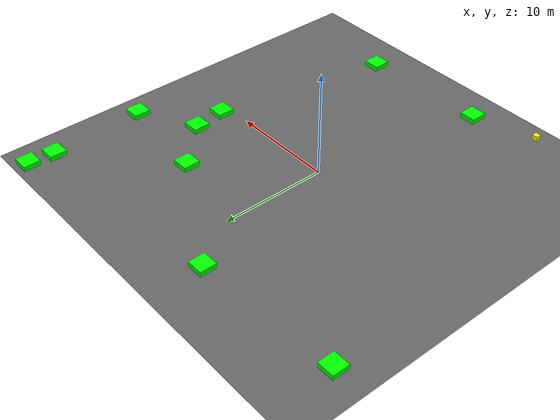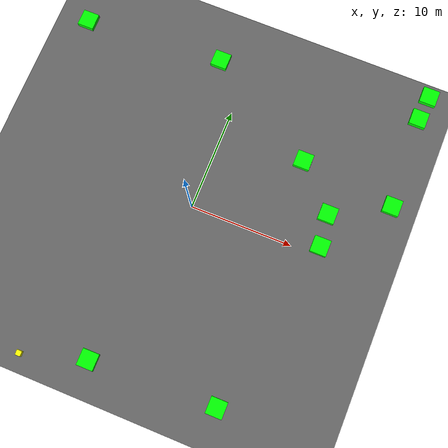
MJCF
<mujoco model="baseline_lvl4_obs10_seed3008">
    <compiler angle="degree" coordinate="local" inertiafromgeom="true"/>
    <option integrator="RK4" timestep="0.01"/>

    <asset>
        <texture builtin="gradient" height="100" rgb1="0.6 0.8 1" rgb2="0 0 0" type="skybox" width="100"/>
        <texture name="floor_texture" type="2d" builtin="checker" width="100" height="100" rgb1="0 0 0" rgb2="0.8 0.8 0.8"/>
        <material name="MatPlane" reflectance="0.5" shininess="1" specular="1" texrepeat="10 10" texture="floor_texture"/>
    </asset>

    <!-- Excluding the contact between the agent and the goal, and the agent and the floor -->
    <contact>
        <exclude body1="agent" body2="goal"/>
        <exclude body1 = "agent" body2 = "floor"/>
    </contact>

    <extension>
        <plugin plugin = "mujoco.pid">
            <instance name = "pid1">
                <config key="kp" value="2"/>
                <config key="ki" value="0"/>
                <config key="kd" value="55"/>
            </instance>
        </plugin>
    </extension>

    <worldbody>
        <light cutoff="100" diffuse="1 1 1" dir="-0 0 -1.3" directional="true" exponent="1" pos="0 0 1.3" specular=".1 .1 .1"/>
        <body name="floor" pos="0 0 0">
            <geom name="floor_geom" type="plane" size="20 20 0.1" material="MatPlane"/>
        </body>

        <!-- Goal -->
        <body name="goal" pos="12.000 -12.000 0">
            <geom name="goal_geom" type="plane" size="0.5 0.5 1" pos="0 0 0" rgba="1 0 0 1"/>
        </body>

        <!-- Agent -->
        <body name="agent" pos="-9.142 -18.295 0.25">
            <joint name="j1" type="slide" axis ="1 0 0 "/>
            <joint name="j2" type="slide" axis ="0 1 0 "/>
            <geom name="agent_geom" type="box" size="0.25 0.25 0.250" rgba="1 1 0 1"/>
        </body>

    <body name="obstacle1" pos="-3.144 -16.505 0.250">
      <geom name="obstacle1_geom" type="box"
            size="0.800 0.800 0.250"
            rgba="0 1 0 1"/>
    </body>
    <body name="obstacle2" pos="9.135 -16.050 0.250">
      <geom name="obstacle2_geom" type="box"
            size="0.800 0.800 0.250"
            rgba="0 1 0 1"/>
    </body>
    <body name="obstacle3" pos="17.062 16.183 0.250">
      <geom name="obstacle3_geom" type="box"
            size="0.800 0.800 0.250"
            rgba="0 1 0 1"/>
    </body>
    <body name="obstacle4" pos="12.177 4.074 0.250">
      <geom name="obstacle4_geom" type="box"
            size="0.800 0.800 0.250"
            rgba="0 1 0 1"/>
    </body>
    <body name="obstacle5" pos="12.583 0.947 0.250">
      <geom name="obstacle5_geom" type="box"
            size="0.800 0.800 0.250"
            rgba="0 1 0 1"/>
    </body>
    <body name="obstacle6" pos="-2.995 14.682 0.250">
      <geom name="obstacle6_geom" type="box"
            size="0.800 0.800 0.250"
            rgba="0 1 0 1"/>
    </body>
    <body name="obstacle7" pos="17.277 18.670 0.250">
      <geom name="obstacle7_geom" type="box"
            size="0.800 0.800 0.250"
            rgba="0 1 0 1"/>
    </body>
    <body name="obstacle8" pos="8.202 8.097 0.250">
      <geom name="obstacle8_geom" type="box"
            size="0.800 0.800 0.250"
            rgba="0 1 0 1"/>
    </body>
    <body name="obstacle9" pos="-16.856 13.710 0.250">
      <geom name="obstacle9_geom" type="box"
            size="0.800 0.800 0.250"
            rgba="0 1 0 1"/>
    </body>
    <body name="obstacle10" pos="17.524 7.022 0.250">
      <geom name="obstacle10_geom" type="box"
            size="0.800 0.800 0.250"
            rgba="0 1 0 1"/>
    </body>
    </worldbody>

    <actuator>
        <plugin joint="j1" plugin="mujoco.pid" instance="pid1" />
        <plugin joint="j2" plugin="mujoco.pid" instance="pid1"/>
    </actuator>

  <sensor>
    <distance name="dist1" geom1="agent_geom" geom2="obstacle1_geom" cutoff="1.5"/>
    <distance name="dist2" geom1="agent_geom" geom2="obstacle2_geom" cutoff="1.5"/>
    <distance name="dist3" geom1="agent_geom" geom2="obstacle3_geom" cutoff="1.5"/>
    <distance name="dist4" geom1="agent_geom" geom2="obstacle4_geom" cutoff="1.5"/>
    <distance name="dist5" geom1="agent_geom" geom2="obstacle5_geom" cutoff="1.5"/>
    <distance name="dist6" geom1="agent_geom" geom2="obstacle6_geom" cutoff="1.5"/>
    <distance name="dist7" geom1="agent_geom" geom2="obstacle7_geom" cutoff="1.5"/>
    <distance name="dist8" geom1="agent_geom" geom2="obstacle8_geom" cutoff="1.5"/>
    <distance name="dist9" geom1="agent_geom" geom2="obstacle9_geom" cutoff="1.5"/>
    <distance name="dist10" geom1="agent_geom" geom2="obstacle10_geom" cutoff="1.5"/>
  </sensor>
</mujoco>
